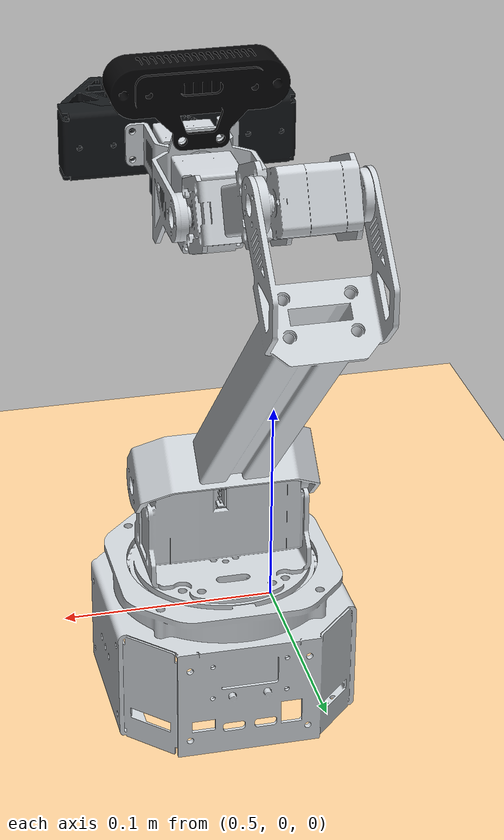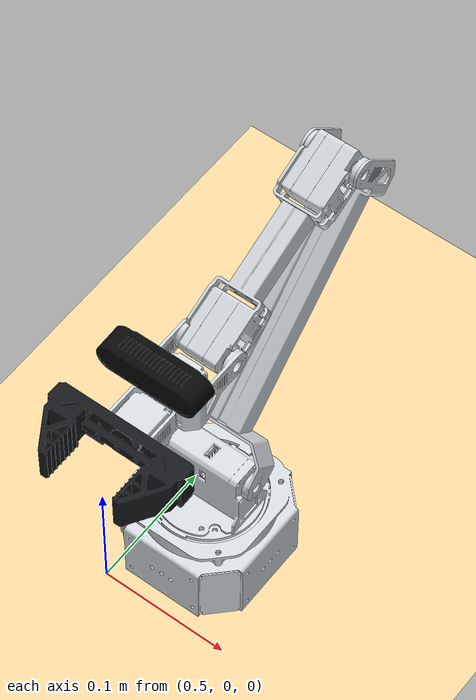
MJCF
<mujoco model="arm_manipulation_scene">
    <include file="assets/robot/robot.xml"/>

    <worldbody>
        <light pos="0 0 1.5" dir="0 0 -1" diffuse="0.8 0.8 0.8"/>
        <geom name="floor" type="plane" size="0 0 0 5" rgba="0.2 0.2 0.2 1"/>

        <!-- task objects / table go here -->
    </worldbody>
</mujoco>

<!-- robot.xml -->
<mujoco model="NexArm-sim">
  <compiler angle="radian" eulerseq="XYZ" />
  <option timestep="0.002" gravity="0 0 -9.81" integrator="implicitfast" />
  <default>
    <joint damping="0.1" armature="0.001" />
    <default class="proximal_servo">
      <position kp="80" kv="8" forcelimited="true" forcerange="-15 15" />
    </default>
    <default class="distal_servo">
      <position kp="40" kv="4" forcelimited="true" forcerange="-8 8" />
    </default>
    <default class="gripper_servo">
      <position kp="300" kv="10" forcelimited="true" forcerange="-20 20" />
    </default>
  </default>
  <asset>
    <mesh name="base_link" file="meshes/base_link.stl" scale="0.001 0.001 0.001" />
    <mesh name="link_1" file="meshes/link_1.stl" scale="0.001 0.001 0.001" />
    <mesh name="link_2" file="meshes/link_2.stl" scale="0.001 0.001 0.001" />
    <mesh name="link_3" file="meshes/link_3.stl" scale="0.001 0.001 0.001" />
    <mesh name="link_4" file="meshes/link_4.stl" scale="0.001 0.001 0.001" />
    <mesh name="link_5" file="meshes/link_5.stl" scale="0.001 0.001 0.001" />
    <mesh name="link_6_gripper_base" file="meshes/link_6_gripper_base.stl" scale="0.001 0.001 0.001" />
    <mesh name="link_6_pinion_gear" file="meshes/link_6_pinion_gear.stl" scale="0.001 0.001 0.001" />
    <mesh name="link_6_left_jaw" file="meshes/link_6_left_jaw.stl" scale="0.001 0.001 0.001" />
    <mesh name="link_6_right_jaw" file="meshes/link_6_right_jaw.stl" scale="0.001 0.001 0.001" />
    <mesh name="cam_mount" file="meshes/cam_mount.stl" scale="0.001 0.001 0.001" />
    <material name="body_white" rgba="0.82 0.84 0.86 1" specular="0.35" shininess="0.45" />
    <material name="gripper_dark" rgba="0.08 0.09 0.10 1" specular="0.2" shininess="0.25" />
    <material name="camera_dark" rgba="0.025 0.025 0.03 1" specular="0.15" shininess="0.2" />
  </asset>
  <worldbody>
    <light directional="true" pos="-0.5 0.5 3" dir="0 0 -1" />
    <geom pos="0 0 0" size="1 1 1" type="plane" rgba="1 0.83 0.61 0.5" />
    <body name="base_link" pos="0.0 0.0 0.0" euler="0.0 -0.0 0.0">
      <geom name="base_link_geom" type="mesh" mesh="base_link" pos="0 0 0" euler="0 0 0" material="body_white" />
      <inertial mass="0.7867009727411078" pos="0.5393802715439057 0.06383699083344999 0.018575393211147675" fullinertia="0.0013980203341607727 0.0014405623684496105 0.0018724205136954886 -4.476497315573924e-07 4.8308012364634e-09 -1.1875609967841377e-05" />
      <body name="link_1" pos="0.0 0.0 0.0" euler="0.0 -0.0 0.0">
        <joint name="joint_1_base_to_link_1" type="hinge" axis="0.0 0.0 -1.0" pos="0.539369 0.063973 0.049" range="-2.356194 2.356194" limited="true" />
        <geom name="link_1_geom" type="mesh" mesh="link_1" pos="0 0 0" euler="0 0 0" material="body_white" />
        <inertial mass="0.7298097041640206" pos="0.5393689780016989 0.06351160578152394 0.0714848128440143" fullinertia="0.0005196380704404749 0.0006372106608207029 0.0006411280732055158 -1.5503778090890374e-06 -1.344094443384014e-09 -5.0336215709095335e-06" />
        <body name="link_2" pos="-0.0041800000000009165 0.0 0.0" euler="0.0 6.061607195718255e-27 0.0">
          <joint name="joint_2_link_1_to_link_2" type="hinge" axis="-1.0 0.0 -6.061607195718255e-27" pos="0.578649000000001 0.063973 0.106445" range="-2.094395 2.094395" limited="true" />
          <geom name="link_2_geom" type="mesh" mesh="link_2" pos="0 0 0" euler="0 0 0" material="body_white" />
          <inertial mass="0.4994895733577694" pos="0.5443690239780077 0.14442087229562123 0.18815068036299265" fullinertia="0.002232805038931151 0.0012834939144562019 0.0011840260217031162 -6.3851771092693355e-12 -7.2314793042593806e-12 -0.0010795166454906132" />
          <body name="link_3" pos="0.0041800000000009165 0.0 2.533751807810786e-29" euler="0.0 -6.061607195718255e-27 0.0">
            <joint name="joint_3_link_2_to_link_3" type="hinge" axis="-1.0 0.0 0.0" pos="0.519439 0.196934 0.291684" range="-2.356194 2.356194" limited="true" />
            <geom name="link_3_geom" type="mesh" mesh="link_3" pos="0 0 0" euler="0 0 0" material="body_white" />
            <inertial mass="0.5027979794005489" pos="0.5381866448873921 0.1332855409202197 0.26208491913557574" fullinertia="0.0014864851567596982 0.0003252813199526583 0.0012457364008059968 -1.7122605747987851e-06 -6.545497001214651e-07 -0.0005481574072941295" />
            <body name="link_4" pos="0.0 0.0 0.0" euler="0.0 -0.0 0.0">
              <joint name="joint_4_link_3_to_link_4" type="hinge" axis="1.0 0.0 0.0" pos="0.519119 0.06552 0.230406" range="-1.745329 1.745329" limited="true" />
              <geom name="link_4_geom" type="mesh" mesh="link_4" pos="0 0 0" euler="0 0 0" material="body_white" />
              <inertial mass="0.11506895352591937" pos="0.5392176779459051 0.041281396593536045 0.22580988795443432" fullinertia="3.8344234090156165e-05 3.793835926420297e-05 5.093441135242682e-05 3.0530253180508643e-07 -1.847602894289313e-08 -2.892912590979997e-06" />
              <body name="link_5" pos="0.0 0.0 0.0" euler="0.0 -0.0 0.0">
                <joint name="joint_5_link_4_to_link_5" type="hinge" axis="0.0 -1.0 0.0" pos="0.539369 0.018286 0.230423" range="-3.141593 3.141593" limited="true" />
                <geom name="link_5_geom" type="mesh" mesh="link_5" pos="0 0 0" euler="0 0 0" material="body_white" />
                <inertial mass="0.08776451730987904" pos="0.5393086008188529 0.002133956241745679 0.22622494096860302" fullinertia="1.6187345587265374e-05 1.8185347874118823e-05 1.8088799273514866e-05 1.9977723024017192e-08 -7.538487065139599e-08 -3.821086892151775e-07" />
                <body name="link_6_gripper_base" pos="0.0 0.0 0.0" euler="0.0 -0.0 0.0">
                  <geom name="link_6_gripper_base_geom" type="mesh" mesh="link_6_gripper_base" pos="0 0 0" euler="0 0 0" material="gripper_dark" />
                  <inertial mass="0.07749283027852251" pos="0.5393685664856291 -0.02102069277037339 0.2306018231485346" fullinertia="8.952537590137775e-06 9.853334412318962e-05 9.251692805788483e-05 1.8891493512758484e-11 5.424480309379476e-15 7.900778562104898e-08" />
                  <site name="grasp_site" pos="0.539369 -0.039412 0.230434" size="0.008" rgba="0 1 0 0" />
                  <body name="link_6_pinion_gear" pos="0.0 0.0 0.0" euler="0.0 -0.0 0.0">
                    <geom name="link_6_pinion_gear_geom" type="mesh" mesh="link_6_pinion_gear" pos="0 0 0" euler="0 0 0" material="gripper_dark" />
                    <inertial mass="0.008131534567490549" pos="0.5393686458772673 -0.01968325967977576 0.23043625852406402" fullinertia="1.9890863152052926e-07 3.7122787318330866e-07 1.9890863139698442e-07 2.6834003769016235e-17 -2.7994100093575724e-16 8.259525326864952e-12" />
                  </body>
                  <body name="link_6_left_jaw" pos="0.0 0.0 0.0" euler="0.0 -0.0 0.0">
                    <joint name="left_jaw_slide_joint" type="slide" axis="1.0 0.0 0.0" pos="0.539369 -0.027946 0.230436" range="0.0 0.0255" limited="true" />
                    <geom name="link_6_left_jaw_geom" type="mesh" mesh="link_6_left_jaw" pos="0 0 0" euler="0 0 0" material="gripper_dark" />
                    <inertial mass="0.11142260604578982" pos="0.5040031870950944 -0.0394122365348351 0.22977194490683142" fullinertia="2.2804235248568422e-05 1.4375065067753767e-05 2.255525860221652e-05 1.934228360217765e-06 7.005900850877433e-07 1.3792815477921619e-06" />
                  </body>
                  <body name="link_6_right_jaw" pos="0.0 0.0 0.0" euler="0.0 -0.0 0.0">
                    <joint name="right_jaw_slide_joint" type="slide" axis="1.0 0.0 0.0" pos="0.539369 -0.027946 0.230436" range="-0.0255 0.0" limited="true" />
                    <geom name="link_6_right_jaw_geom" type="mesh" mesh="link_6_right_jaw" pos="0 0 0" euler="0 0 0" material="gripper_dark" />
                    <inertial mass="0.11142260605875676" pos="0.5747341098285005 -0.0394122993228384 0.23109511524340523" fullinertia="2.2804760926301536e-05 1.4375855706745544e-05 2.255499388791743e-05 -1.9342949416764274e-06 7.017275770130477e-07 -1.375626328256694e-06" />
                  </body>
                  <body name="cam_mount" pos="0.0 0.0 0.0" euler="0.0 -0.0 0.0">
                    <geom name="cam_mount_geom" type="mesh" mesh="cam_mount" pos="0 0 0" euler="0 0 0" material="camera_dark" />
                    <camera name="wrist" pos="0.539369 -0.04 0.27" xyaxes="-1.000000 -0.000000 0.000000 0.000000 -0.865426 0.501036" fovy="75" />
                  </body>
                </body>
              </body>
            </body>
          </body>
        </body>
      </body>
    </body>
  </worldbody>
  <actuator>
    <position name="joint_1_position" class="proximal_servo" joint="joint_1_base_to_link_1" ctrllimited="true" ctrlrange="-2.356194 2.356194" />
    <position name="joint_2_position" class="proximal_servo" joint="joint_2_link_1_to_link_2" ctrllimited="true" ctrlrange="-2.094395 2.094395" />
    <position name="joint_3_position" class="proximal_servo" joint="joint_3_link_2_to_link_3" ctrllimited="true" ctrlrange="-2.356194 2.356194" />
    <position name="joint_4_position" class="distal_servo" joint="joint_4_link_3_to_link_4" ctrllimited="true" ctrlrange="-1.745329 1.745329" />
    <position name="joint_5_position" class="distal_servo" joint="joint_5_link_4_to_link_5" ctrllimited="true" ctrlrange="-3.141593 3.141593" />
    <position name="gripper_position" class="gripper_servo" joint="left_jaw_slide_joint" ctrllimited="true" ctrlrange="0 0.0255" />
  </actuator>
  <equality>
    <joint name="gripper_jaws_opposed_1_to_1" joint1="right_jaw_slide_joint" joint2="left_jaw_slide_joint" polycoef="0 -1 0 0 0" />
  </equality>
  <contact>
    <exclude name="exclude_base_link_1" body1="base_link" body2="link_1" />
    <exclude name="exclude_jaw_pair" body1="link_6_left_jaw" body2="link_6_right_jaw" />
  </contact>
</mujoco>
